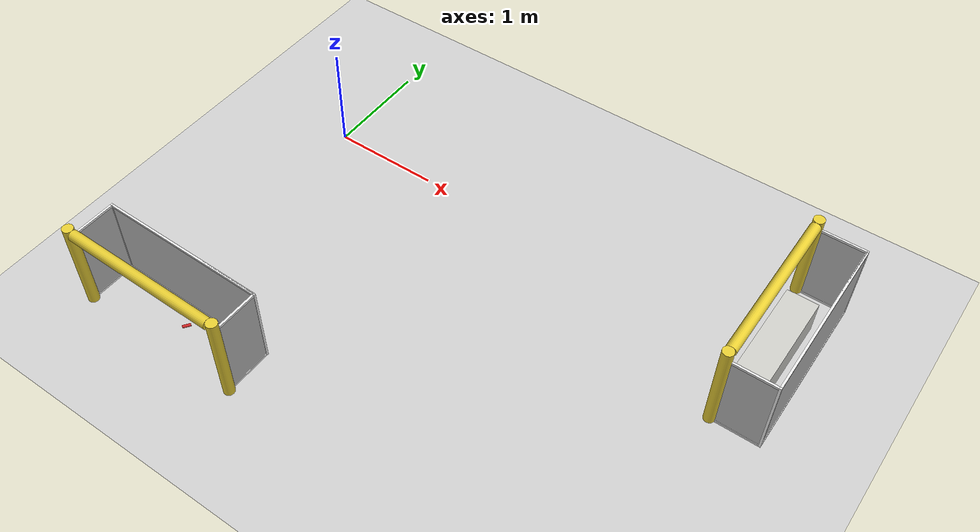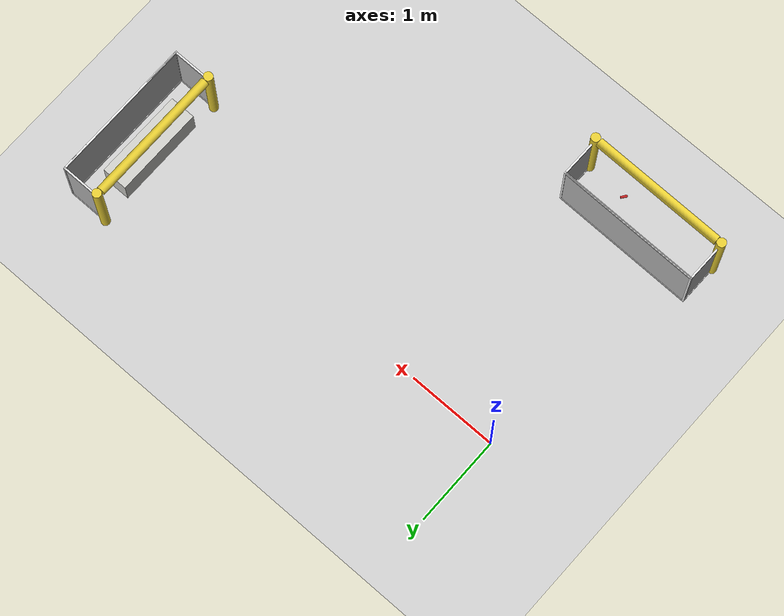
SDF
<sdf version="1.6">
 <world name="default">
  <model name="ground_plane">
   <static>1</static>
   <link name="link">
    <collision name="collision">
     <geometry><plane><normal>0 0 1</normal><size>100 100</size></plane></geometry>
     <surface>
      <contact><collide_bitmask>65535</collide_bitmask></contact>
      <friction><ode><mu>100</mu><mu2>50</mu2></ode></friction>
     </surface>
    </collision>
    <visual name="visual">
     <cast_shadows>0</cast_shadows>
     <geometry><plane><normal>0 0 1</normal><size>100 100</size></plane></geometry>
     <material>
      <script><uri>file://media/materials/scripts/gazebo.material</uri><name>Gazebo/Grey</name></script>
     </material>
    </visual>
   </link>
  </model>
  <model name="small_table">
   <link name="link">
    <inertial>
     <mass>0.815675</mass>
     <inertia>
      <ixx>0.075238</ixx>
      <ixy>0</ixy>
      <ixz>0</ixz>
      <iyy>0.0128756</iyy>
      <iyz>0</iyz>
      <izz>0.0735833</izz>
     </inertia>
    </inertial>
    <visual name="visual">
     <geometry><box><size>0.287297 1 0.326929</size></box></geometry>
     <material>
      <script><name>Gazebo/CeilingTiled</name><uri>file://media/materials/scripts/gazebo.material</uri></script>
      <shader type="pixel"><normal_map>__default__</normal_map></shader>
      <ambient>0.7 0.7 0.7 1</ambient>
      <diffuse>0.9 0.9 0.9 1</diffuse>
      <specular>0.01 0.01 0.01 1</specular>
      <emissive>0 0 0 1</emissive>
     </material>
    </visual>
    <collision name="collision">
     <geometry><box><size>0.287297 1 0.326929</size></box></geometry>
     <surface>
      <friction>
       <ode><mu>1</mu><mu2>1</mu2><fdir1>0 0 0</fdir1><slip1>0</slip1><slip2>0</slip2></ode>
       <torsional>
        <coefficient>1</coefficient>
        <patch_radius>0</patch_radius>
        <surface_radius>0</surface_radius>
        <use_patch_radius>1</use_patch_radius>
        <ode><slip>0</slip></ode>
       </torsional>
      </friction>
      <bounce><restitution_coefficient>0</restitution_coefficient><threshold>1e+06</threshold></bounce>
      <contact>
       <collide_without_contact>0</collide_without_contact>
       <collide_without_contact_bitmask>1</collide_without_contact_bitmask>
       <collide_bitmask>1</collide_bitmask>
       <ode>
        <soft_cfm>0</soft_cfm>
        <soft_erp>0.2</soft_erp>
        <kp>1e+13</kp>
        <kd>1</kd>
        <max_vel>0.01</max_vel>
        <min_depth>0</min_depth>
       </ode>
       <bullet>
        <split_impulse>1</split_impulse>
        <split_impulse_penetration_threshold>-0.01</split_impulse_penetration_threshold>
        <soft_cfm>0</soft_cfm>
        <soft_erp>0.2</soft_erp>
        <kp>1e+13</kp>
        <kd>1</kd>
       </bullet>
      </contact>
     </surface>
    </collision>
   </link>
   <static>0</static>
   <pose>4.51206 -0.009672 0.15981 -0.00032 -0.001901 -0.001814</pose>
  </model>
  <model name="RoboCup 2014 SPL Goal">
   <static>1</static>
   <link name="left_post">
    <pose>0 0.8 0.45 0 -0 0</pose>
    <collision name="collision">
     <geometry><cylinder><radius>0.05</radius><length>0.9</length></cylinder></geometry>
    </collision>
    <visual name="visual">
     <geometry><cylinder><radius>0.05</radius><length>0.9</length></cylinder></geometry>
     <material>
      <script><uri>file://media/materials/scripts/gazebo.material</uri><name>Gazebo/ZincYellow</name></script>
     </material>
    </visual>
   </link>
   <link name="left_support_horiz_lower">
    <pose>0.24 0.8 0.01 0 -0 0</pose>
    <collision name="collision"><geometry><box><size>0.38 0.02 0.02</size></box></geometry></collision>
    <visual name="visual">
     <geometry><box><size>0.38 0.02 0.02</size></box></geometry>
     <material>
      <script><uri>file://media/materials/scripts/gazebo.material</uri><name>Gazebo/White</name></script>
     </material>
    </visual>
   </link>
   <link name="left_support_horiz_upper">
    <pose>0.24 0.8 0.79 0 -0 0</pose>
    <collision name="collision"><geometry><box><size>0.38 0.02 0.02</size></box></geometry></collision>
    <visual name="visual">
     <geometry><box><size>0.38 0.02 0.02</size></box></geometry>
     <material>
      <script><uri>file://media/materials/scripts/gazebo.material</uri><name>Gazebo/White</name></script>
     </material>
    </visual>
   </link>
   <link name="left_support_vertical">
    <pose>0.44 0.8 0.4 3.14159 1.57079 3.14159</pose>
    <collision name="collision"><geometry><box><size>0.8 0.02 0.02</size></box></geometry></collision>
    <visual name="visual">
     <geometry><box><size>0.8 0.02 0.02</size></box></geometry>
     <material>
      <script><uri>file://media/materials/scripts/gazebo.material</uri><name>Gazebo/White</name></script>
     </material>
    </visual>
   </link>
   <link name="right_support_horiz_lower">
    <pose>0.24 -0.8 0.01 0 -0 0</pose>
    <collision name="collision"><geometry><box><size>0.38 0.02 0.02</size></box></geometry></collision>
    <visual name="visual">
     <geometry><box><size>0.38 0.02 0.02</size></box></geometry>
     <material>
      <script><uri>file://media/materials/scripts/gazebo.material</uri><name>Gazebo/White</name></script>
     </material>
    </visual>
   </link>
   <link name="right_support_horiz_upper">
    <pose>0.24 -0.8 0.79 0 -0 0</pose>
    <collision name="collision"><geometry><box><size>0.38 0.02 0.02</size></box></geometry></collision>
    <visual name="visual">
     <geometry><box><size>0.38 0.02 0.02</size></box></geometry>
     <material>
      <script><uri>file://media/materials/scripts/gazebo.material</uri><name>Gazebo/White</name></script>
     </material>
    </visual>
   </link>
   <link name="right_support_vertical">
    <pose>0.44 -0.8 0.4 3.14159 1.57079 3.14159</pose>
    <collision name="collision"><geometry><box><size>0.8 0.02 0.02</size></box></geometry></collision>
    <visual name="visual">
     <geometry><box><size>0.8 0.02 0.02</size></box></geometry>
     <material>
      <script><uri>file://media/materials/scripts/gazebo.material</uri><name>Gazebo/White</name></script>
     </material>
    </visual>
   </link>
   <link name="center_support_horiz_lower">
    <pose>0.44 0 0.01 3.14159 1.57079 3.14159</pose>
    <collision name="collision"><geometry><box><size>0.02 1.58 0.02</size></box></geometry></collision>
    <visual name="visual">
     <geometry><box><size>0.02 1.58 0.02</size></box></geometry>
     <material>
      <script><uri>file://media/materials/scripts/gazebo.material</uri><name>Gazebo/White</name></script>
     </material>
    </visual>
   </link>
   <link name="center_support_horiz_upper">
    <pose>0.44 0 0.79 3.14159 1.57079 3.14159</pose>
    <collision name="collision"><geometry><box><size>0.02 1.58 0.02</size></box></geometry></collision>
    <visual name="visual">
     <geometry><box><size>0.02 1.58 0.02</size></box></geometry>
     <material>
      <script><uri>file://media/materials/scripts/gazebo.material</uri><name>Gazebo/White</name></script>
     </material>
    </visual>
   </link>
   <link name="right_post">
    <pose>0 -0.8 0.45 0 -0 0</pose>
    <collision name="collision">
     <geometry><cylinder><radius>0.05</radius><length>0.9</length></cylinder></geometry>
    </collision>
    <visual name="visual">
     <geometry><cylinder><radius>0.05</radius><length>0.9</length></cylinder></geometry>
     <material>
      <script><uri>file://media/materials/scripts/gazebo.material</uri><name>Gazebo/ZincYellow</name></script>
     </material>
    </visual>
   </link>
   <link name="crossbar">
    <pose>0 0 0.85 1.57 1.57 0</pose>
    <collision name="collision">
     <geometry><cylinder><radius>0.05</radius><length>1.5</length></cylinder></geometry>
    </collision>
    <visual name="visual">
     <geometry><cylinder><radius>0.05</radius><length>1.5</length></cylinder></geometry>
     <material>
      <script><uri>file://media/materials/scripts/gazebo.material</uri><name>Gazebo/ZincYellow</name></script>
     </material>
    </visual>
   </link>
   <link name="center_net">
    <pose>0.44 0 0.4 0 -0 0</pose>
    <collision name="collision"><geometry><box><size>0.01 1.6 0.8</size></box></geometry></collision>
    <visual name="visual">
     <geometry><box><size>0.01 1.6 0.8</size></box></geometry>
     <material>
      <script>
       <uri>model://robocup09_spl_field/materials/scripts/</uri>
       <uri>model://robocup09_spl_field/materials/textures/</uri>
       <name>RoboCup/Net</name>
      </script>
     </material>
    </visual>
   </link>
   <link name="left_net">
    <pose>0.24 0.8 0.4 0 -0 0</pose>
    <collision name="collision"><geometry><box><size>0.38 0.01 0.76</size></box></geometry></collision>
    <visual name="visual">
     <geometry><box><size>0.38 0.01 0.76</size></box></geometry>
     <material>
      <script>
       <uri>model://robocup09_spl_field/materials/scripts/</uri>
       <uri>model://robocup09_spl_field/materials/textures/</uri>
       <name>RoboCup/Net</name>
      </script>
     </material>
    </visual>
   </link>
   <link name="right_net">
    <pose>0.24 -0.8 0.4 0 -0 0</pose>
    <collision name="collision"><geometry><box><size>0.38 0.01 0.76</size></box></geometry></collision>
    <visual name="visual">
     <geometry><box><size>0.38 0.01 0.76</size></box></geometry>
     <material>
      <script>
       <uri>model://robocup09_spl_field/materials/scripts/</uri>
       <uri>model://robocup09_spl_field/materials/textures/</uri>
       <name>RoboCup/Net</name>
      </script>
     </material>
    </visual>
   </link>
   <pose>4.37127 0.011795 0 0 -0 0</pose>
  </model>
  <model name="RoboCup 2014 SPL Goal_0">
   <static>1</static>
   <link name="left_post">
    <pose>0 0.8 0.45 0 -0 0</pose>
    <collision name="collision">
     <geometry><cylinder><radius>0.05</radius><length>0.9</length></cylinder></geometry>
    </collision>
    <visual name="visual">
     <geometry><cylinder><radius>0.05</radius><length>0.9</length></cylinder></geometry>
     <material>
      <script><uri>file://media/materials/scripts/gazebo.material</uri><name>Gazebo/ZincYellow</name></script>
     </material>
    </visual>
   </link>
   <link name="left_support_horiz_lower">
    <pose>0.24 0.8 0.01 0 -0 0</pose>
    <collision name="collision"><geometry><box><size>0.38 0.02 0.02</size></box></geometry></collision>
    <visual name="visual">
     <geometry><box><size>0.38 0.02 0.02</size></box></geometry>
     <material>
      <script><uri>file://media/materials/scripts/gazebo.material</uri><name>Gazebo/White</name></script>
     </material>
    </visual>
   </link>
   <link name="left_support_horiz_upper">
    <pose>0.24 0.8 0.79 0 -0 0</pose>
    <collision name="collision"><geometry><box><size>0.38 0.02 0.02</size></box></geometry></collision>
    <visual name="visual">
     <geometry><box><size>0.38 0.02 0.02</size></box></geometry>
     <material>
      <script><uri>file://media/materials/scripts/gazebo.material</uri><name>Gazebo/White</name></script>
     </material>
    </visual>
   </link>
   <link name="left_support_vertical">
    <pose>0.44 0.8 0.4 3.14159 1.57079 3.14159</pose>
    <collision name="collision"><geometry><box><size>0.8 0.02 0.02</size></box></geometry></collision>
    <visual name="visual">
     <geometry><box><size>0.8 0.02 0.02</size></box></geometry>
     <material>
      <script><uri>file://media/materials/scripts/gazebo.material</uri><name>Gazebo/White</name></script>
     </material>
    </visual>
   </link>
   <link name="right_support_horiz_lower">
    <pose>0.24 -0.8 0.01 0 -0 0</pose>
    <collision name="collision"><geometry><box><size>0.38 0.02 0.02</size></box></geometry></collision>
    <visual name="visual">
     <geometry><box><size>0.38 0.02 0.02</size></box></geometry>
     <material>
      <script><uri>file://media/materials/scripts/gazebo.material</uri><name>Gazebo/White</name></script>
     </material>
    </visual>
   </link>
   <link name="right_support_horiz_upper">
    <pose>0.24 -0.8 0.79 0 -0 0</pose>
    <collision name="collision"><geometry><box><size>0.38 0.02 0.02</size></box></geometry></collision>
    <visual name="visual">
     <geometry><box><size>0.38 0.02 0.02</size></box></geometry>
     <material>
      <script><uri>file://media/materials/scripts/gazebo.material</uri><name>Gazebo/White</name></script>
     </material>
    </visual>
   </link>
   <link name="right_support_vertical">
    <pose>0.44 -0.8 0.4 3.14159 1.57079 3.14159</pose>
    <collision name="collision"><geometry><box><size>0.8 0.02 0.02</size></box></geometry></collision>
    <visual name="visual">
     <geometry><box><size>0.8 0.02 0.02</size></box></geometry>
     <material>
      <script><uri>file://media/materials/scripts/gazebo.material</uri><name>Gazebo/White</name></script>
     </material>
    </visual>
   </link>
   <link name="center_support_horiz_lower">
    <pose>0.44 0 0.01 3.14159 1.57079 3.14159</pose>
    <collision name="collision"><geometry><box><size>0.02 1.58 0.02</size></box></geometry></collision>
    <visual name="visual">
     <geometry><box><size>0.02 1.58 0.02</size></box></geometry>
     <material>
      <script><uri>file://media/materials/scripts/gazebo.material</uri><name>Gazebo/White</name></script>
     </material>
    </visual>
   </link>
   <link name="center_support_horiz_upper">
    <pose>0.44 0 0.79 3.14159 1.57079 3.14159</pose>
    <collision name="collision"><geometry><box><size>0.02 1.58 0.02</size></box></geometry></collision>
    <visual name="visual">
     <geometry><box><size>0.02 1.58 0.02</size></box></geometry>
     <material>
      <script><uri>file://media/materials/scripts/gazebo.material</uri><name>Gazebo/White</name></script>
     </material>
    </visual>
   </link>
   <link name="right_post">
    <pose>0 -0.8 0.45 0 -0 0</pose>
    <collision name="collision">
     <geometry><cylinder><radius>0.05</radius><length>0.9</length></cylinder></geometry>
    </collision>
    <visual name="visual">
     <geometry><cylinder><radius>0.05</radius><length>0.9</length></cylinder></geometry>
     <material>
      <script><uri>file://media/materials/scripts/gazebo.material</uri><name>Gazebo/ZincYellow</name></script>
     </material>
    </visual>
   </link>
   <link name="crossbar">
    <pose>0 0 0.85 1.57 1.57 0</pose>
    <collision name="collision">
     <geometry><cylinder><radius>0.05</radius><length>1.5</length></cylinder></geometry>
    </collision>
    <visual name="visual">
     <geometry><cylinder><radius>0.05</radius><length>1.5</length></cylinder></geometry>
     <material>
      <script><uri>file://media/materials/scripts/gazebo.material</uri><name>Gazebo/ZincYellow</name></script>
     </material>
    </visual>
   </link>
   <link name="center_net">
    <pose>0.44 0 0.4 0 -0 0</pose>
    <collision name="collision"><geometry><box><size>0.01 1.6 0.8</size></box></geometry></collision>
    <visual name="visual">
     <geometry><box><size>0.01 1.6 0.8</size></box></geometry>
     <material>
      <script>
       <uri>model://robocup09_spl_field/materials/scripts/</uri>
       <uri>model://robocup09_spl_field/materials/textures/</uri>
       <name>RoboCup/Net</name>
      </script>
     </material>
    </visual>
   </link>
   <link name="left_net">
    <pose>0.24 0.8 0.4 0 -0 0</pose>
    <collision name="collision"><geometry><box><size>0.38 0.01 0.76</size></box></geometry></collision>
    <visual name="visual">
     <geometry><box><size>0.38 0.01 0.76</size></box></geometry>
     <material>
      <script>
       <uri>model://robocup09_spl_field/materials/scripts/</uri>
       <uri>model://robocup09_spl_field/materials/textures/</uri>
       <name>RoboCup/Net</name>
      </script>
     </material>
    </visual>
   </link>
   <link name="right_net">
    <pose>0.24 -0.8 0.4 0 -0 0</pose>
    <collision name="collision"><geometry><box><size>0.38 0.01 0.76</size></box></geometry></collision>
    <visual name="visual">
     <geometry><box><size>0.38 0.01 0.76</size></box></geometry>
     <material>
      <script>
       <uri>model://robocup09_spl_field/materials/scripts/</uri>
       <uri>model://robocup09_spl_field/materials/textures/</uri>
       <name>RoboCup/Net</name>
      </script>
     </material>
    </visual>
   </link>
   <pose>0.317115 -2.80323 -0 0 -0 1.56097</pose>
  </model>
  <model name="grasp_cylinder_2_1">
   <link name="link">
    <inertial>
     <mass>0.05</mass>
     <inertia>
      <ixx>2.297e-05</ixx>
      <ixy>0</ixy>
      <ixz>0</ixz>
      <iyy>2.297e-05</iyy>
      <iyz>0</iyz>
      <izz>4.31e-06</izz>
     </inertia>
    </inertial>
    <visual name="visual">
     <geometry><cylinder><radius>0.0131252</radius><length>0.0706744</length></cylinder></geometry>
     <material>
      <script><name>Gazebo/Red</name><uri>file://media/materials/scripts/gazebo.material</uri></script>
      <shader type="vertex"><normal_map>__default__</normal_map></shader>
      <ambient>1 0 0 1</ambient>
      <diffuse>0.7 0.7 0.7 1</diffuse>
      <specular>0.01 0.01 0.01 1</specular>
      <emissive>0 0 0 1</emissive>
     </material>
    </visual>
    <collision name="collision">
     <geometry><cylinder><radius>0.013125</radius><length>0.070674</length></cylinder></geometry>
     <surface>
      <friction>
       <ode><mu>100</mu><mu2>100</mu2><fdir1>0 0 0</fdir1><slip1>0</slip1><slip2>0</slip2></ode>
       <torsional>
        <coefficient>1</coefficient>
        <patch_radius>0</patch_radius>
        <surface_radius>0</surface_radius>
        <use_patch_radius>1</use_patch_radius>
        <ode><slip>0</slip></ode>
       </torsional>
      </friction>
      <bounce><restitution_coefficient>0</restitution_coefficient><threshold>1e+06</threshold></bounce>
      <contact>
       <collide_without_contact>0</collide_without_contact>
       <collide_without_contact_bitmask>1</collide_without_contact_bitmask>
       <collide_bitmask>1</collide_bitmask>
       <ode>
        <soft_cfm>0</soft_cfm>
        <soft_erp>0.2</soft_erp>
        <kp>1e+13</kp>
        <kd>1</kd>
        <max_vel>0.01</max_vel>
        <min_depth>0</min_depth>
       </ode>
       <bullet>
        <split_impulse>1</split_impulse>
        <split_impulse_penetration_threshold>-0.01</split_impulse_penetration_threshold>
        <soft_cfm>0</soft_cfm>
        <soft_erp>0.2</soft_erp>
        <kp>1e+13</kp>
        <kd>1</kd>
       </bullet>
      </contact>
     </surface>
    </collision>
   </link>
   <static>0</static>
   <pose>0.605401 -2.69386 0.340054 -1.5708 -1.55661 2.50855</pose>
  </model>
 </world>
</sdf>
